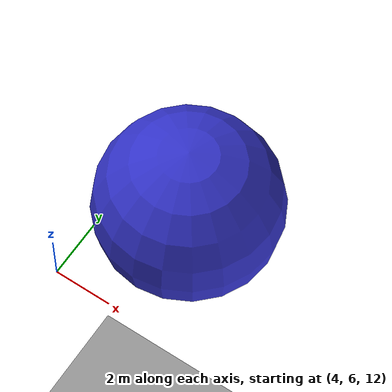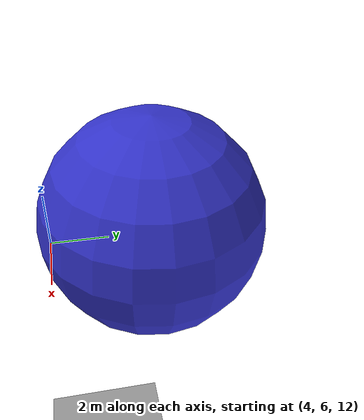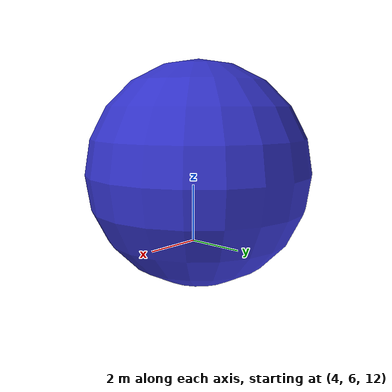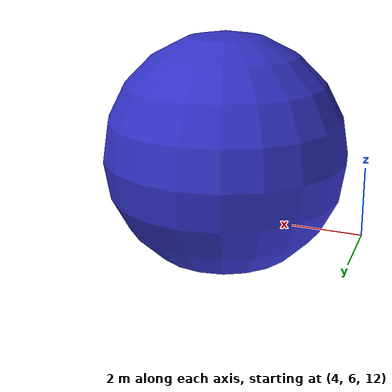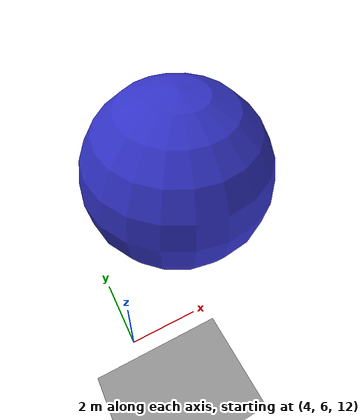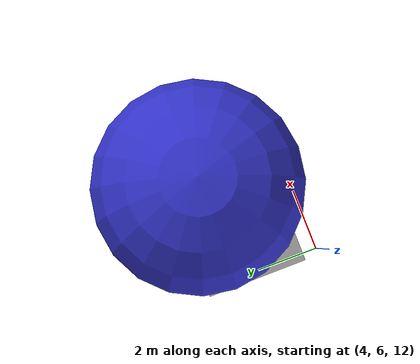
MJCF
<mujoco>
    <worldbody>
        <!-- Ball -->
        <body name="falling_ball" pos="7 9 15" gravcomp="1">
            <geom type="sphere" size="3" rgba="0.2 0.2 0.8 1" density="5" />
            <joint type="slide" axis="1 0 0" name="ball_slide_x" />
            <joint type="slide" axis="0 1 0" name="ball_slide_y" />
            <joint type="slide" axis="0 0 1" name="ball_slide_z" />
            <site name="ball_site" pos="0 0 0" size="0.1" rgba="1 0 0 1" />
        </body>
        <!-- Floor plane -->
        <geom type="plane" size="10 10 1" rgba="0.6 0.6 0.6 1" />
    </worldbody>

    <!-- Actuators -->
    <actuator>
        <position name="actuator_x" joint="ball_slide_x" ctrllimited="true" ctrlrange="-10 10"
            kp="1000" dampratio="1" />
        <position name="actuator_y" joint="ball_slide_y" ctrllimited="true" ctrlrange="-10 10"
            kp="1000" dampratio="1" />
        <position name="actuator_z" joint="ball_slide_z" ctrllimited="true" ctrlrange="-10 10"
            kp="1000" dampratio="1" />
    </actuator>
</mujoco>
